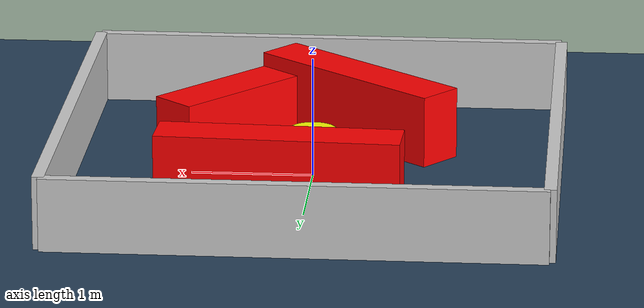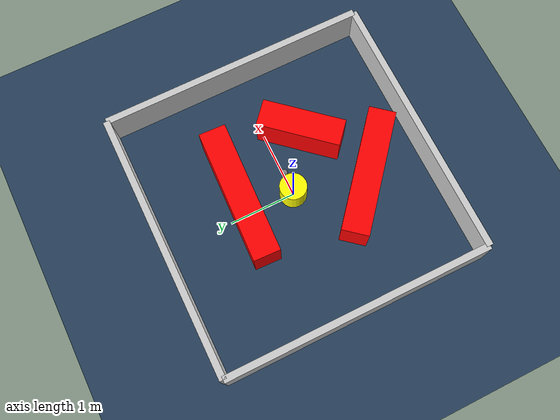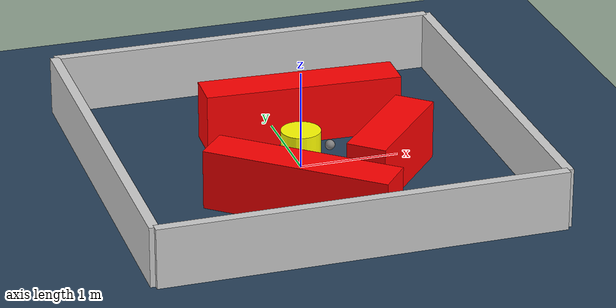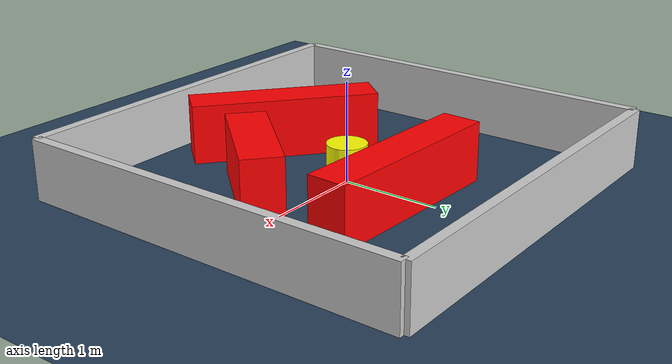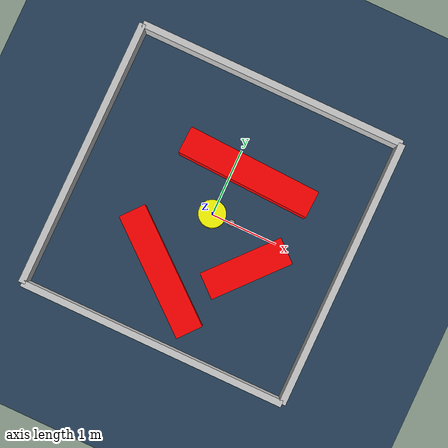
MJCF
<?xml version="1.0" ?>
<mujoco model="generated_environment">
  <option timestep="0.01" integrator="RK4" cone="elliptic"/>
  <default>
    <geom density="1"/>
  </default>
  <asset>
    <texture builtin="gradient" height="3072" rgb1="0.3 0.5 0.7" rgb2="0 0 0" type="skybox" width="512"/>
    <texture builtin="checker" height="300" mark="edge" markrgb="0.8 0.8 0.8" name="groundplane" rgb1="0.2 0.3 0.4" rgb2="0.1 0.2 0.3" type="2d" width="300"/>
    <material name="groundplane" reflectance="0.2" texrepeat="5 5" texture="groundplane" texuniform="true"/>
    <material name="robot" rgba="0.0 1.0 0.0 1"/>
  </asset>
  <worldbody>
    <light dir="0 0 -1" directional="true" pos="0 0 1.5"/>
    <geom condim="4" friction="1.0 0.005 0.001" material="groundplane" name="floor" size="0 0 0.05" type="plane"/>
    <body name="walls">
      <geom name="wall_1" condim="4" pos="-2.0 0.0 0.3" rgba="0.800000011920929 0.800000011920929 0.800000011920929 1.0" size="0.05 2.0 0.3" type="box"/>
      <geom name="wall_2" condim="4" pos="2.0 0.0 0.3" rgba="0.800000011920929 0.800000011920929 0.800000011920929 1.0" size="0.05 2.0 0.3" type="box"/>
      <geom name="wall_3" condim="4" pos="0.0 -2.0 0.3" rgba="0.800000011920929 0.800000011920929 0.800000011920929 1.0" size="2.0 0.05 0.3" type="box"/>
      <geom name="wall_4" condim="4" pos="0.0 2.0 0.3" rgba="0.800000011920929 0.800000011920929 0.800000011920929 1.0" size="2.0 0.05 0.3" type="box"/>
    </body>
    <body name="robot">
      <joint name="joint_x" type="slide" pos="0 0 0" axis="1 0 0"/>
      <joint name="joint_y" type="slide" pos="0 0 0" axis="0 1 0"/>
      <geom name="robot" type="sphere" pos="0.3 0.0 0.2" size="0.05" mass="5." friction="1.0 0.005 0.0001" condim="4" rgba="0.5 0.5 0.5 1.0"/>
      <site name="sensor_ball"/>
    </body>
    <body name="obstacle_movable_1">
      <geom name="obstacle_movable_1" condim="4" pos="0.0 0.0 0.2" euler="0 0 0.0" friction="1.0 0.005 0.001" rgba="1.0 1.0 0.0 1.0" size="0.2 0.2 0.0" type="cylinder" mass="0.1"/>
      <joint type="free"/>
    </body>
    <body name="obstacle_2_static">
      <geom name="obstacle_2_static" condim="4" pos="-0.30936013758200664 -1.0396451369362152 0.3" euler="0 0 320.1676541305059" friction="1.0 0.005 0.001" rgba="1 0 0 1" size="0.9404330490802519 0.2 0.3" type="box"/>
    </body>
    <body name="obstacle_3_static">
      <geom name="obstacle_3_static" condim="4" pos="0.7557149679713087 -0.49965026205552476 0.3" euler="0 0 48.6393833683335" friction="1.0 0.005 0.001" rgba="1 0 0 1" size="0.6174534064746758 0.2 0.3" type="box"/>
    </body>
    <body name="obstacle_4_static">
      <geom name="obstacle_4_static" condim="4" pos="0.2187778085952632 0.7369606886233206 0.3" euler="0 0 357.64670463592347" friction="1.0 0.005 0.001" rgba="1 0 0 1" size="0.9997417375480038 0.2 0.3" type="box"/>
    </body>
  </worldbody>
  <actuator>
    <motor name="actuator_x" joint="joint_x" gear="1" ctrlrange="-1 1"/>
    <motor name="actuator_y" joint="joint_y" gear="1" ctrlrange="-1 1"/>
  </actuator>
</mujoco>
